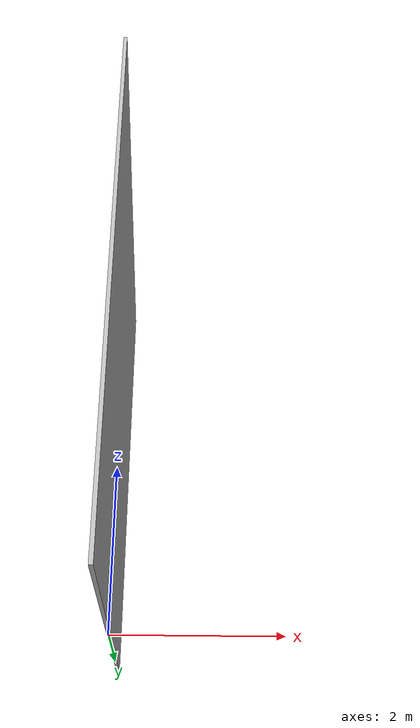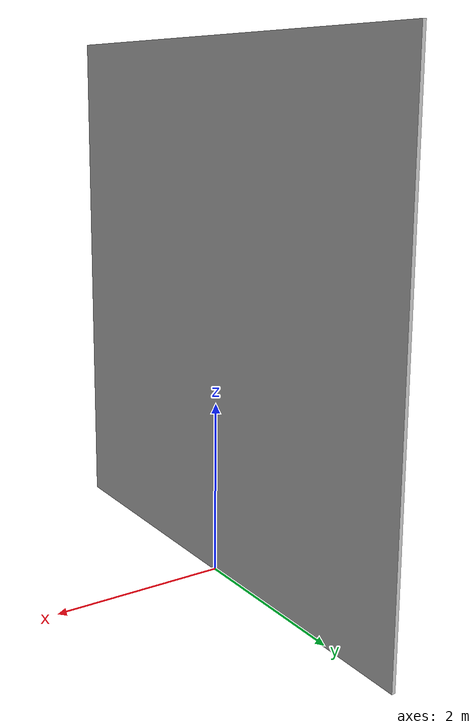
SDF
<?xml version="1.0" ?><sdf version="1.6">
  <model name="h">
    <static>true</static>
    <link name="link">
      <visual name="visual">
        <geometry>
          <mesh>
            <uri>model://h/meshes/h.dae</uri>
          <scale>4.0 12.0 12.0</scale></mesh>
        </geometry>
      </visual>
    </link>
  </model>
</sdf>
